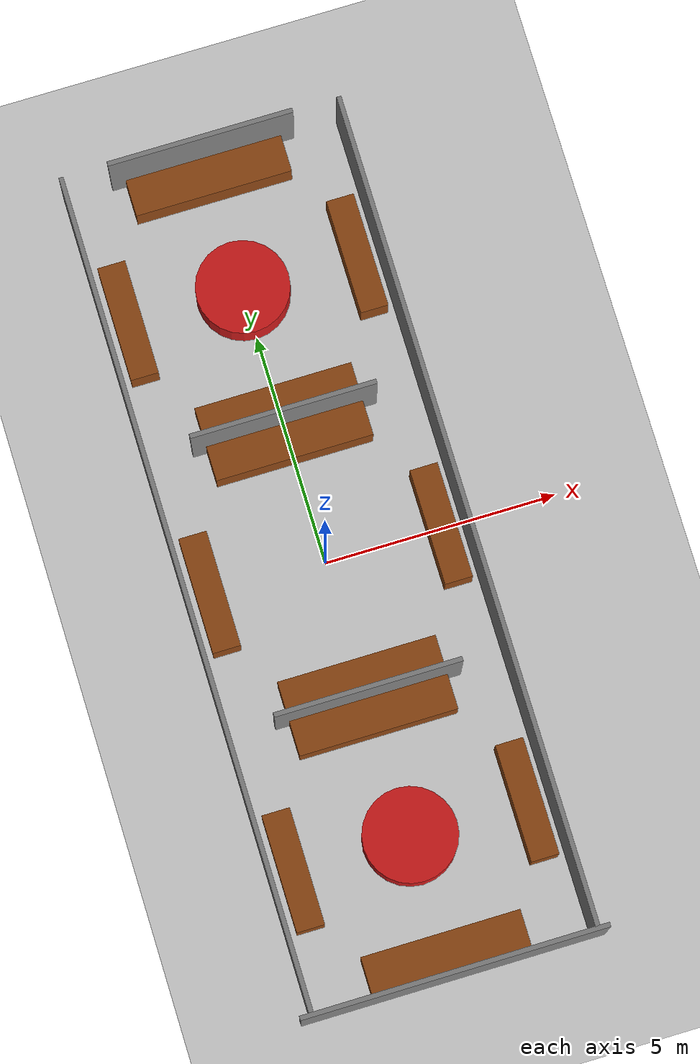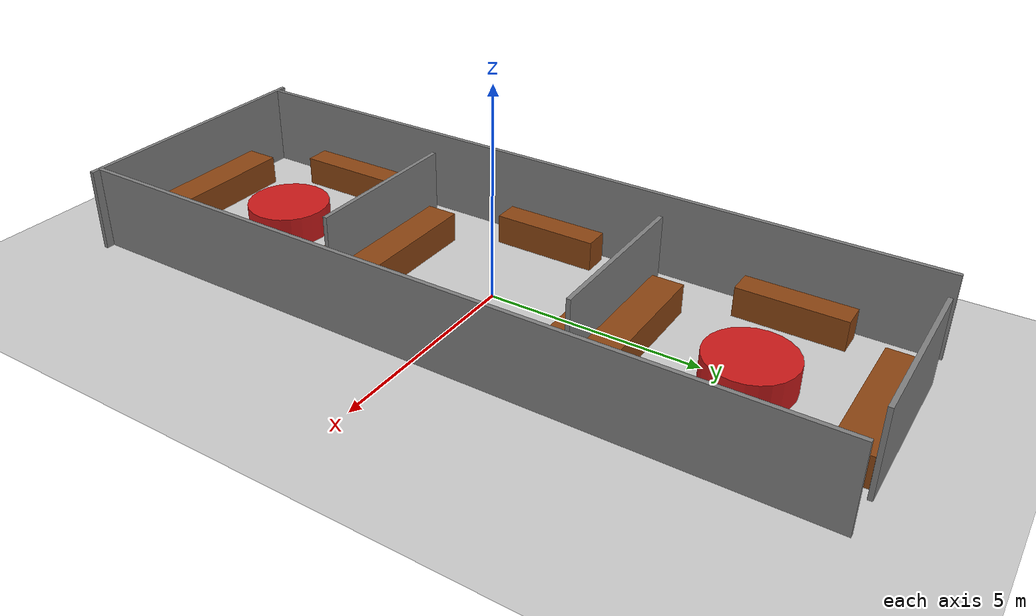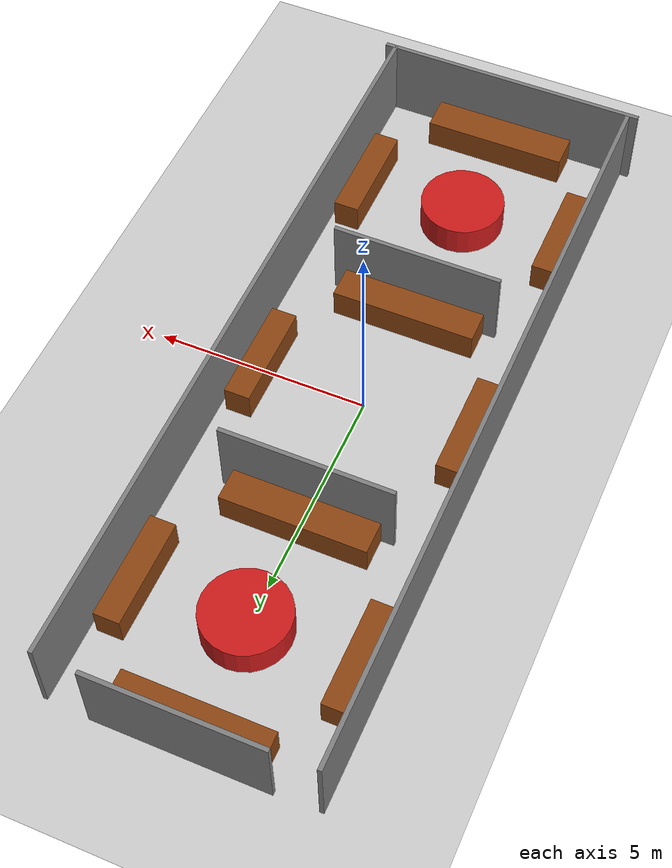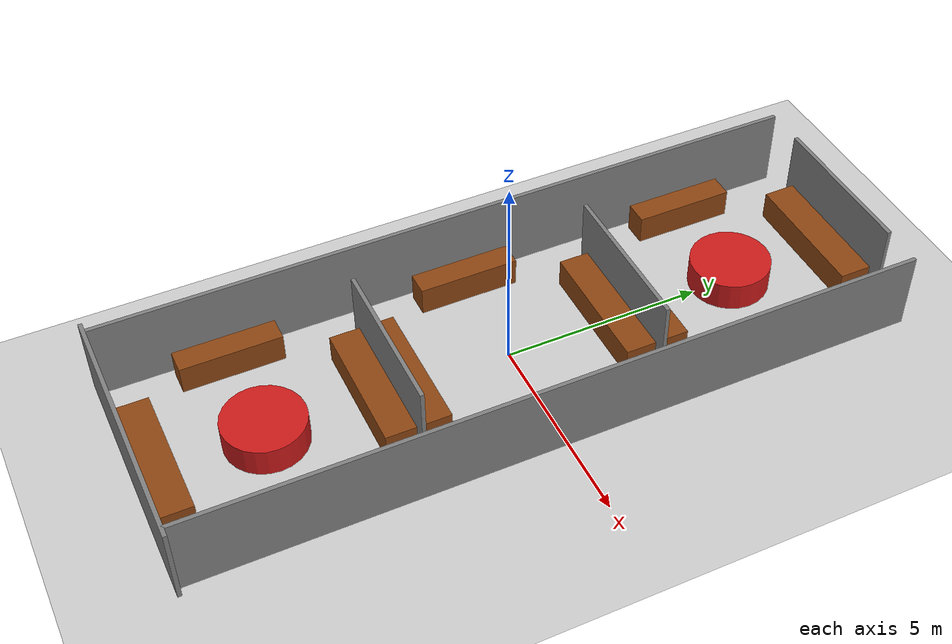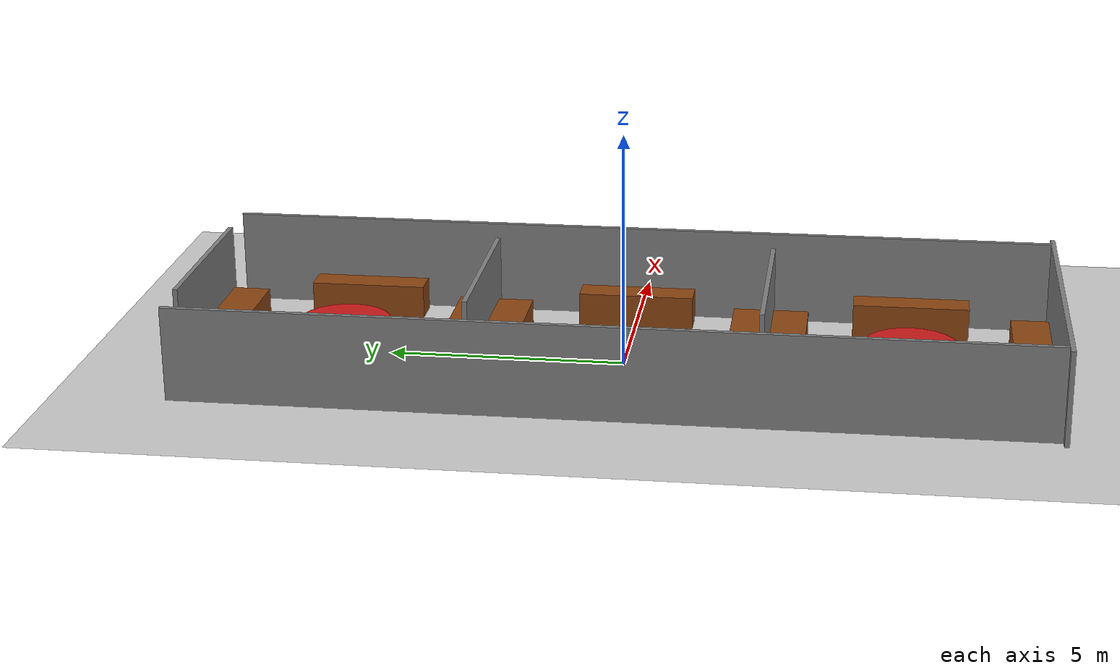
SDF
<?xml version="1.0" ?>
<sdf version="1.8">
  <world name="obstacle_world">

    <plugin filename="ignition-gazebo-physics-system" name="ignition::gazebo::systems::Physics"/>
    <plugin filename="ignition-gazebo-user-commands-system" name="ignition::gazebo::systems::UserCommands"/>
    <plugin filename="ignition-gazebo-scene-broadcaster-system" name="ignition::gazebo::systems::SceneBroadcaster"/>

    <!-- Light -->
    <light type="directional" name="sun">
      <pose>0 0 10 0 0 0</pose>
      <diffuse>0.8 0.8 0.8 1</diffuse>
      <direction>-0.5 0.1 -0.9</direction>
    </light>

    <!-- Ground -->
    <model name="ground_plane">
      <static>true</static>
      <link name="link">
        <collision name="ground_collision">
          <geometry>
            <plane>
              <normal>0 0 1</normal>
              <size>100 100</size>
            </plane>
          </geometry>
        </collision>
        <visual name="ground_visual">
          <geometry>
            <plane>
              <normal>0 0 1</normal>
              <size>100 100</size>
            </plane>
          </geometry>
        </visual>
      </link>
    </model>

    <!-- WALL TEMPLATE -->
    <!-- Grey Walls -->

    <!-- Left -->
    <model name="wall_left">
      <pose>0 3 1 0 0 1.5708</pose>
      <static>true</static>
      <link name="link">
        <collision name="collision">
          <geometry><box><size>0.1 4 2</size></box></geometry>
        </collision>
        <visual name="visual">
          <geometry><box><size>0.1 4 2</size></box></geometry>
          <material>
            <ambient>0.5 0.5 0.5 1</ambient>
            <diffuse>0.5 0.5 0.5 1</diffuse>
          </material>
        </visual>
      </link>
    </model>

    <model name="far_wall_left">
      <pose>0 9 1 0 0 1.5708</pose>
      <static>true</static>
      <link name="link">
        <collision name="collision">
          <geometry><box><size>0.1 4 2</size></box></geometry>
        </collision>
        <visual name="visual">
          <geometry><box><size>0.1 4 2</size></box></geometry>
          <material>
            <ambient>0.5 0.5 0.5 1</ambient>
            <diffuse>0.5 0.5 0.5 1</diffuse>
          </material>
        </visual>
      </link>
    </model>
    <!-- Right -->
    <model name="wall_right">
      <pose>0 -3 1 0 0 1.5708</pose>
      <static>true</static>
      <link name="link">
        <collision name="collision">
          <geometry><box><size>0.1 4 2</size></box></geometry>
        </collision>
        <visual name="visual">
          <geometry><box><size>0.1 4 2</size></box></geometry>
          <material>
            <ambient>0.5 0.5 0.5 1</ambient>
            <diffuse>0.5 0.5 0.5 1</diffuse>
          </material>
        </visual>
      </link>
    </model>

    <model name="far_wall_right">
      <pose>0 -9 1 0 0 1.5708</pose>
      <static>true</static>
      <link name="link">
        <collision name="collision">
          <geometry><box><size>0.1 6.5 2</size></box></geometry>
        </collision>
        <visual name="visual">
          <geometry><box><size>0.1 6.5 2</size></box></geometry>
          <material>
            <ambient>0.5 0.5 0.5 1</ambient>
            <diffuse>0.5 0.5 0.5 1</diffuse>
          </material>
        </visual>
      </link>
    </model>

    <!-- Front -->
    <model name="wall_front">
      <pose>3 0 1 0 0 0</pose>
      <static>true</static>
      <link name="link">
        <collision name="collision">
          <geometry><box><size>0.1 18 2</size></box></geometry>
        </collision>
        <visual name="visual">
          <geometry><box><size>0.1 18 2</size></box></geometry>
          <material>
            <ambient>0.5 0.5 0.5 1</ambient>
            <diffuse>0.5 0.5 0.5 1</diffuse>
          </material>
        </visual>
      </link>
    </model>

    <!-- Back -->
    <model name="wall_back">
      <pose>-3 0 1 0 0 0</pose>
      <static>true</static>
      <link name="link">
        <collision name="collision">
          <geometry><box><size>0.1 18 2</size></box></geometry>
        </collision>
        <visual name="visual">
          <geometry><box><size>0.1 18 2</size></box></geometry>
          <material>
            <ambient>0.5 0.5 0.5 1</ambient>
            <diffuse>0.5 0.5 0.5 1</diffuse>
          </material>
        </visual>
      </link>
    </model>

    <!-- Brown Cubes -->

    <!-- Left -->
    <model name="1r_cube_left">
      <pose>0 8.5 0.2 0 0 0</pose>
      <static>true</static>
      <link name="link">
        <collision name="collision">
          <geometry><box><size>3.4 0.8 1.0</size></box></geometry>
        </collision>
        <visual name="visual">
          <geometry><box><size>3.4 0.8 1.0</size></box></geometry>
          <material>
            <ambient>0.55 0.27 0.07 1</ambient>
            <diffuse>0.55 0.27 0.07 1</diffuse>
          </material>
        </visual>
      </link>
    </model>

    <model name="1r_cube_right">
      <pose>0 3 0.2 0 0 0</pose>
      <static>true</static>
      <link name="link">
        <collision name="collision">
          <geometry><box><size>3.4 1.6 1.0</size></box></geometry>
        </collision>
        <visual name="visual">
          <geometry><box><size>3.4 1.6 1.0</size></box></geometry>
          <material>
            <ambient>0.55 0.27 0.07 1</ambient>
            <diffuse>0.55 0.27 0.07 1</diffuse>
          </material>
        </visual>
      </link>
    </model>

    <model name="2r_cube_right">
      <pose>0 -3 0.2 0 0 0</pose>
      <static>true</static>
      <link name="link">
        <collision name="collision">
          <geometry><box><size>3.4 1.6 1.0</size></box></geometry>
        </collision>
        <visual name="visual">
          <geometry><box><size>3.4 1.6 1.0</size></box></geometry>
          <material>
            <ambient>0.55 0.27 0.07 1</ambient>
            <diffuse>0.55 0.27 0.07 1</diffuse>
          </material>
        </visual>
      </link>
    </model>

    <model name="2r_cube_left">
      <pose>0 -8.5 0.2 0 0 0</pose>
      <static>true</static>
      <link name="link">
        <collision name="collision">
          <geometry><box><size>3.4 0.8 1.0</size></box></geometry>
        </collision>
        <visual name="visual">
          <geometry><box><size>3.4 0.8 1.0</size></box></geometry>
          <material>
            <ambient>0.55 0.27 0.07 1</ambient>
            <diffuse>0.55 0.27 0.07 1</diffuse>
          </material>
        </visual>
      </link>
    </model>

    <!-- Front -->
    <model name="cube_front_1">
      <pose>2.5 0 0.2 0 0 0</pose>
      <static>true</static>
      <link name="link">
        <collision name="collision">
          <geometry><box><size>0.6 2.5 1.0</size></box></geometry>
        </collision>
        <visual name="visual">
          <geometry><box><size>0.6 2.5 1.0</size></box></geometry>
          <material>
            <ambient>0.55 0.27 0.07 1</ambient>
            <diffuse>0.55 0.27 0.07 1</diffuse>
          </material>
        </visual>
      </link>
    </model>

    <model name="cube_front_2">
      <pose>2.5 6 0.2 0 0 0</pose>
      <static>true</static>
      <link name="link">
        <collision name="collision">
          <geometry><box><size>0.6 2.5 1.0</size></box></geometry>
        </collision>
        <visual name="visual">
          <geometry><box><size>0.6 2.5 1.0</size></box></geometry>
          <material>
            <ambient>0.55 0.27 0.07 1</ambient>
            <diffuse>0.55 0.27 0.07 1</diffuse>
          </material>
        </visual>
      </link>
    </model>

    <model name="cube_front_3">
      <pose>2.5 -6 0.2 0 0 0</pose>
      <static>true</static>
      <link name="link">
        <collision name="collision">
          <geometry><box><size>0.6 2.5 1.0</size></box></geometry>
        </collision>
        <visual name="visual">
          <geometry><box><size>0.6 2.5 1.0</size></box></geometry>
          <material>
            <ambient>0.55 0.27 0.07 1</ambient>
            <diffuse>0.55 0.27 0.07 1</diffuse>
          </material>
        </visual>
      </link>
    </model>

    <model name="cube_back_1">
      <pose>-2.5 0 0.2 0 0 0</pose>
      <static>true</static>
      <link name="link">
        <collision name="collision">
          <geometry><box><size>0.6 2.5 1.0</size></box></geometry>
        </collision>
        <visual name="visual">
          <geometry><box><size>0.6 2.5 1.0</size></box></geometry>
          <material>
            <ambient>0.55 0.27 0.07 1</ambient>
            <diffuse>0.55 0.27 0.07 1</diffuse>
          </material>
        </visual>
      </link>
    </model>

    <model name="cube_back_2">
      <pose>-2.5 -6 0.2 0 0 0</pose>
      <static>true</static>
      <link name="link">
        <collision name="collision">
          <geometry><box><size>0.6 2.5 1.0</size></box></geometry>
        </collision>
        <visual name="visual">
          <geometry><box><size>0.6 2.5 1.0</size></box></geometry>
          <material>
            <ambient>0.55 0.27 0.07 1</ambient>
            <diffuse>0.55 0.27 0.07 1</diffuse>
          </material>
        </visual>
      </link>
    </model>

    <model name="cube_back_3">
      <pose>-2.5 6 0.2 0 0 0</pose>
      <static>true</static>
      <link name="link">
        <collision name="collision">
          <geometry><box><size>0.6 2.5 1.0</size></box></geometry>
        </collision>
        <visual name="visual">
          <geometry><box><size>0.6 2.5 1.0</size></box></geometry>
          <material>
            <ambient>0.55 0.27 0.07 1</ambient>
            <diffuse>0.55 0.27 0.07 1</diffuse>
          </material>
        </visual>
      </link>
    </model>

    <model name="cylinder_origin_1">
      <pose>0 6 0.2 0 0 0</pose>
      <static>true</static>
      <link name="link">

        <collision name="collision">
        <geometry>
            <cylinder>
            <radius>1.0</radius>
            <length>1.0</length>
            </cylinder>
        </geometry>
        </collision>

        <visual name="visual">
        <geometry>
            <cylinder>
            <radius>1.0</radius>
            <length>1.0</length>
            </cylinder>
        </geometry>
        <material>
            <ambient>0.8 0.1 0.1 1</ambient>
            <diffuse>0.8 0.1 0.1 1</diffuse>
        </material>
        </visual>

      </link>
    </model>

    <model name="cylinder_origin_2">
      <pose>0 -6 0.2 0 0 0</pose>
      <static>true</static>
      <link name="link">

        <collision name="collision">
        <geometry>
            <cylinder>
            <radius>1.0</radius>
            <length>1.0</length>
            </cylinder>
        </geometry>
        </collision>

        <visual name="visual">
        <geometry>
            <cylinder>
            <radius>1.0</radius>
            <length>1.0</length>
            </cylinder>
        </geometry>
        <material>
            <ambient>0.8 0.1 0.1 1</ambient>
            <diffuse>0.8 0.1 0.1 1</diffuse>
        </material>
        </visual>

      </link>
    </model>

  </world>
</sdf>
